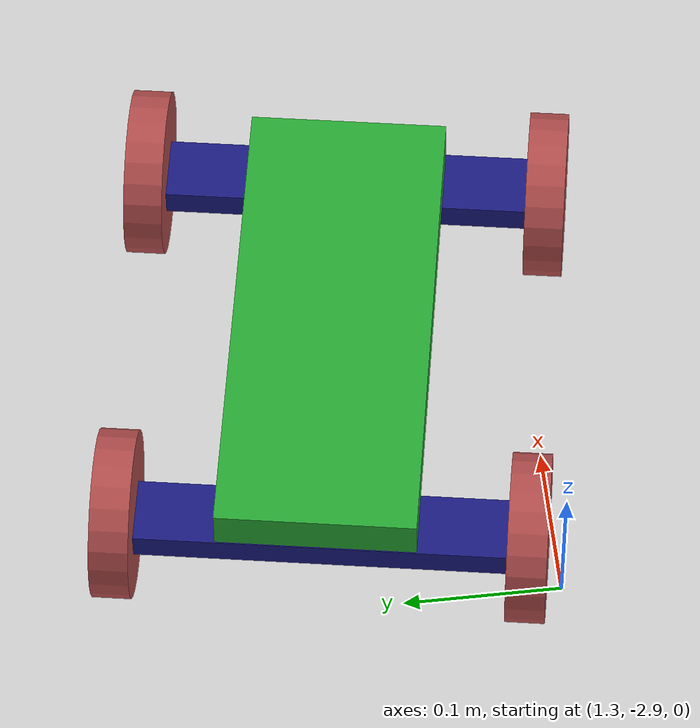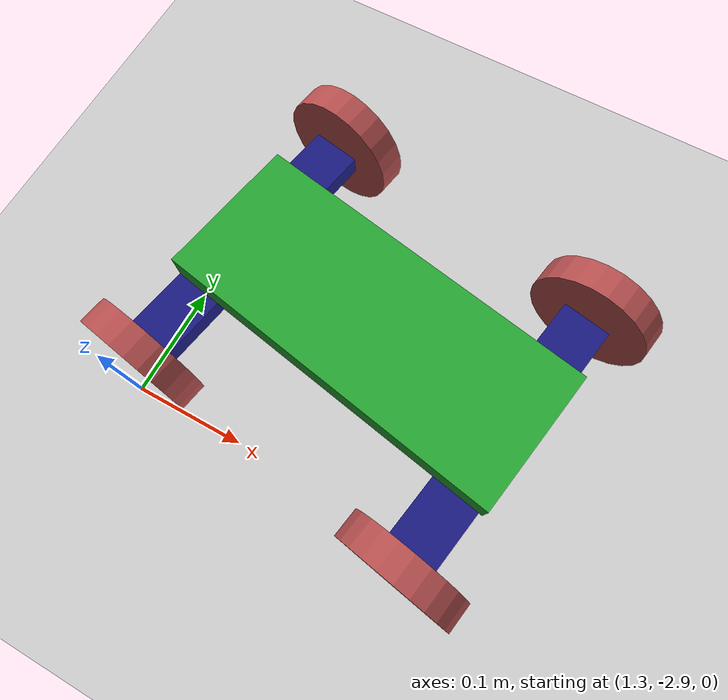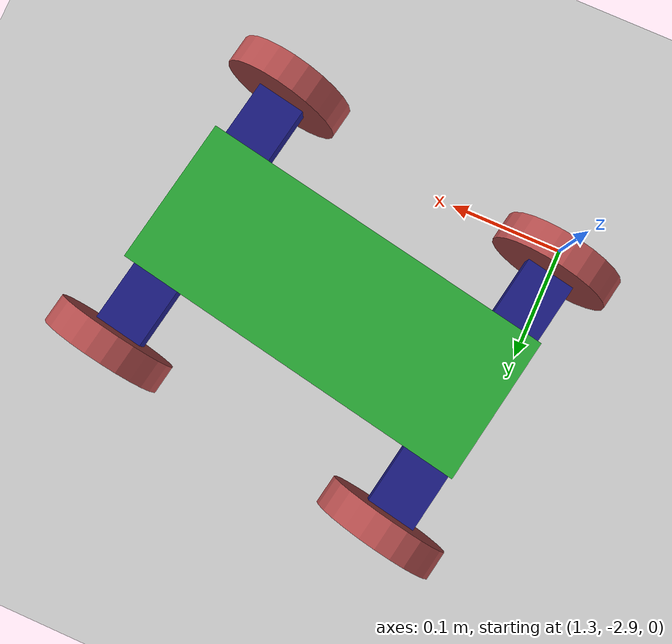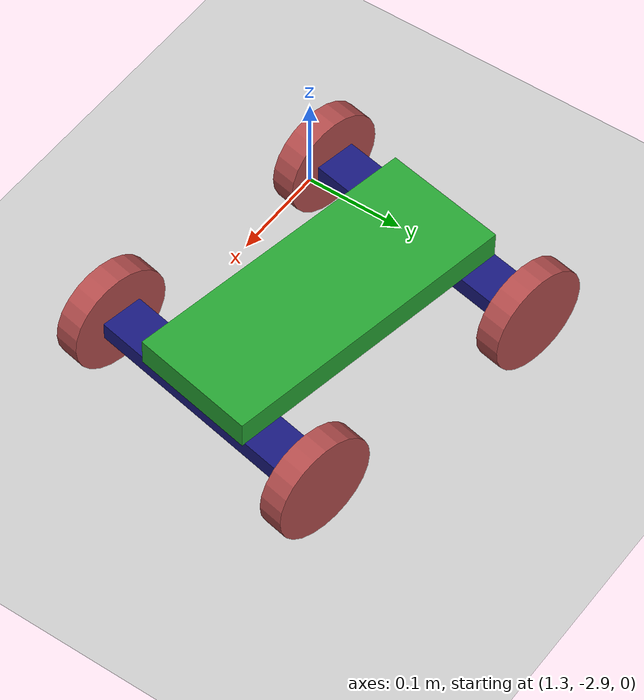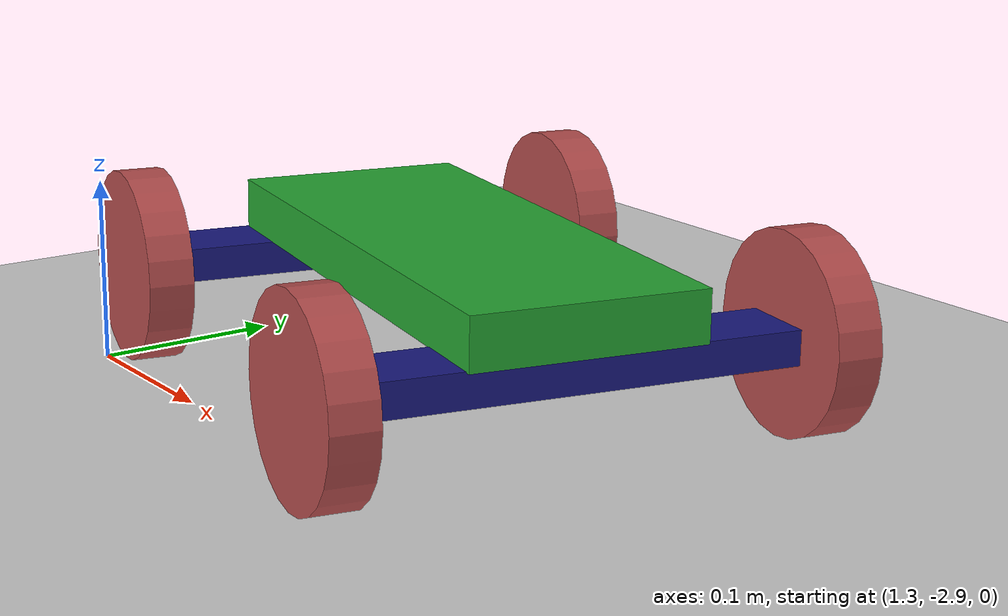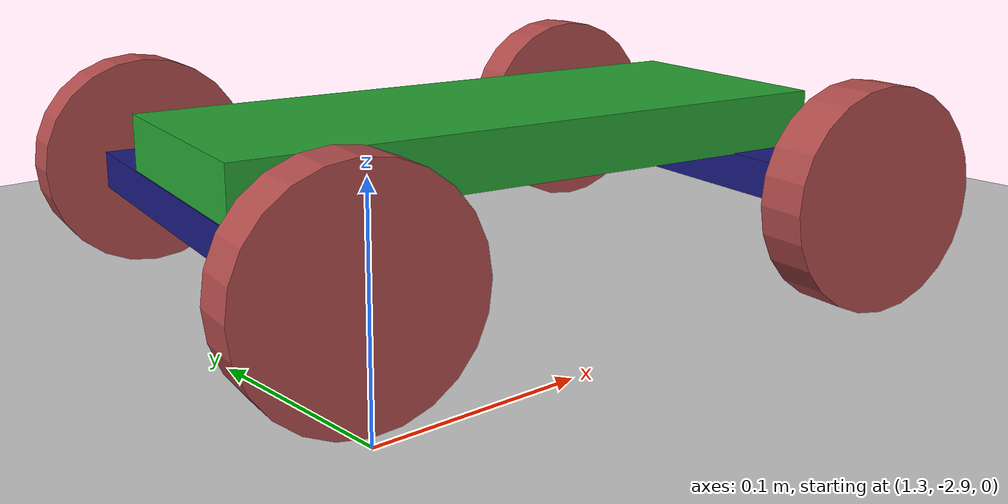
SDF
<sdf version="1.6">
 <world name="default">
  <model name="ground_plane">
   <static>1</static>
   <link name="link">
    <collision name="collision">
     <geometry><plane><normal>0 0 1</normal><size>100 100</size></plane></geometry>
     <surface><friction><ode><mu>100</mu><mu2>50</mu2></ode></friction></surface>
    </collision>
    <visual name="visual">
     <cast_shadows>0</cast_shadows>
     <geometry><plane><normal>0 0 1</normal><size>100 100</size></plane></geometry>
     <material>
      <script><uri>file://media/materials/scripts/gazebo.material</uri><name>Gazebo/Grey</name></script>
     </material>
    </visual>
   </link>
  </model>
  <model name="enwheer">
   <link name="link_0">
    <pose>0.246758 -0.006744 0.04096 0 -0 0</pose>
    <inertial>
     <mass>0.901262</mass>
     <inertia>
      <ixx>1.42341e-06</ixx>
      <ixy>0</ixy>
      <ixz>0</ixz>
      <iyy>8.35922e-06</iyy>
      <iyz>0</iyz>
      <izz>9.65174e-06</izz>
     </inertia>
    </inertial>
    <visual name="visual">
     <geometry><box><size>0.306687 0.125276 0.027544</size></box></geometry>
     <material>
      <lighting>1</lighting>
      <script><uri>file://media/materials/scripts/gazebo.material</uri><name>Gazebo/Green</name></script>
      <ambient>0.4 0.8 0.6 1</ambient>
      <diffuse>0.4 0.8 0.9 1</diffuse>
      <specular>0.41 0.81 0.81 1</specular>
      <emissive>0 0 0 1</emissive>
      <shader type="vertex"><normal_map>__default__</normal_map></shader>
     </material>
    </visual>
    <collision name="collision">
     <geometry><box><size>0.306687 0.125276 0.027544</size></box></geometry>
     <surface>
      <friction>
       <ode><mu>1</mu><mu2>1</mu2><fdir1>0 0 0</fdir1><slip1>0</slip1><slip2>0</slip2></ode>
       <torsional>
        <coefficient>1</coefficient>
        <patch_radius>0</patch_radius>
        <surface_radius>0</surface_radius>
        <use_patch_radius>1</use_patch_radius>
        <ode><slip>0</slip></ode>
       </torsional>
      </friction>
      <bounce><restitution_coefficient>0</restitution_coefficient><threshold>1e+06</threshold></bounce>
      <contact>
       <collide_without_contact>0</collide_without_contact>
       <collide_without_contact_bitmask>1</collide_without_contact_bitmask>
       <collide_bitmask>1</collide_bitmask>
       <ode>
        <soft_cfm>0</soft_cfm>
        <soft_erp>0.2</soft_erp>
        <kp>1e+13</kp>
        <kd>1</kd>
        <max_vel>0.01</max_vel>
        <min_depth>0</min_depth>
       </ode>
       <bullet>
        <split_impulse>1</split_impulse>
        <split_impulse_penetration_threshold>-0.01</split_impulse_penetration_threshold>
        <soft_cfm>0</soft_cfm>
        <soft_erp>0.2</soft_erp>
        <kp>1e+13</kp>
        <kd>1</kd>
       </bullet>
      </contact>
     </surface>
    </collision>
   </link>
   <link name="link_1">
    <pose>0.377424 -0.006572 0.033164 0 -0 0</pose>
    <inertial>
     <mass>1.82516e-05</mass>
     <inertia>
      <ixx>3.46685e-09</ixx>
      <ixy>0</ixy>
      <ixz>0</ixz>
      <iyy>3.46685e-09</iyy>
      <iyz>0</iyz>
      <izz>4.07787e-09</izz>
     </inertia>
    </inertial>
    <visual name="visual">
     <geometry><cylinder><radius>0.020977</radius><length>0.0103325</length></cylinder></geometry>
     <material>
      <lighting>1</lighting>
      <script><uri>file://media/materials/scripts/gazebo.material</uri><name>Gazebo/Grey</name></script>
      <ambient>0.3 0.3 0.3 1</ambient>
      <diffuse>0.7 0.7 0.7 1</diffuse>
      <specular>0.01 0.01 0.01 1</specular>
      <emissive>0 0 0 1</emissive>
      <shader type="vertex"><normal_map>__default__</normal_map></shader>
     </material>
    </visual>
    <collision name="collision">
     <geometry><cylinder><radius>0.020977</radius><length>0.010332</length></cylinder></geometry>
     <surface>
      <friction>
       <ode><mu>1</mu><mu2>1</mu2><fdir1>0 0 0</fdir1><slip1>0</slip1><slip2>0</slip2></ode>
       <torsional>
        <coefficient>1</coefficient>
        <patch_radius>0</patch_radius>
        <surface_radius>0</surface_radius>
        <use_patch_radius>1</use_patch_radius>
        <ode><slip>0</slip></ode>
       </torsional>
      </friction>
      <bounce><restitution_coefficient>0</restitution_coefficient><threshold>1e+06</threshold></bounce>
      <contact>
       <collide_without_contact>0</collide_without_contact>
       <collide_without_contact_bitmask>1</collide_without_contact_bitmask>
       <collide_bitmask>1</collide_bitmask>
       <ode>
        <soft_cfm>0</soft_cfm>
        <soft_erp>0.2</soft_erp>
        <kp>1e+13</kp>
        <kd>1</kd>
        <max_vel>0.01</max_vel>
        <min_depth>0</min_depth>
       </ode>
       <bullet>
        <split_impulse>1</split_impulse>
        <split_impulse_penetration_threshold>-0.01</split_impulse_penetration_threshold>
        <soft_cfm>0</soft_cfm>
        <soft_erp>0.2</soft_erp>
        <kp>1e+13</kp>
        <kd>1</kd>
       </bullet>
      </contact>
     </surface>
    </collision>
   </link>
   <model name="wheel">
    <link name="link_1_clone">
     <pose>0.966475 -0.011272 0.197727 0 -0 0</pose>
     <inertial>
      <mass>0.0900613</mass>
      <inertia>
       <ixx>6.585e-05</ixx>
       <ixy>0</ixy>
       <ixz>0</ixz>
       <iyy>5.861e-05</iyy>
       <iyz>0</iyz>
       <izz>7.429e-05</izz>
      </inertia>
     </inertial>
     <visual name="visual">
      <geometry><box><size>0.042286 0.233056 0.018284</size></box></geometry>
      <material>
       <lighting>1</lighting>
       <script><uri>file://media/materials/scripts/gazebo.material</uri><name>Gazebo/Grey</name></script>
       <ambient>0.1 0.1 0.5 1</ambient>
       <diffuse>0.1 0.1 0.5 1</diffuse>
       <specular>0.01 0.01 0.51 1</specular>
       <emissive>0 0 0 1</emissive>
       <shader type="vertex"><normal_map>__default__</normal_map></shader>
      </material>
     </visual>
     <collision name="collision">
      <geometry><box><size>0.042286 0.233056 0.018284</size></box></geometry>
      <surface>
       <friction>
        <ode><mu>1</mu><mu2>1</mu2><fdir1>0 0 0</fdir1><slip1>0</slip1><slip2>0</slip2></ode>
        <torsional>
         <coefficient>1</coefficient>
         <patch_radius>0</patch_radius>
         <surface_radius>0</surface_radius>
         <use_patch_radius>1</use_patch_radius>
         <ode><slip>0</slip></ode>
        </torsional>
       </friction>
       <bounce><restitution_coefficient>0</restitution_coefficient><threshold>1e+06</threshold></bounce>
       <contact>
        <collide_without_contact>0</collide_without_contact>
        <collide_without_contact_bitmask>1</collide_without_contact_bitmask>
        <collide_bitmask>1</collide_bitmask>
        <ode>
         <soft_cfm>0</soft_cfm>
         <soft_erp>0.2</soft_erp>
         <kp>1e+13</kp>
         <kd>1</kd>
         <max_vel>0.01</max_vel>
         <min_depth>0</min_depth>
        </ode>
        <bullet>
         <split_impulse>1</split_impulse>
         <split_impulse_penetration_threshold>-0.01</split_impulse_penetration_threshold>
         <soft_cfm>0</soft_cfm>
         <soft_erp>0.2</soft_erp>
         <kp>1e+13</kp>
         <kd>1</kd>
        </bullet>
       </contact>
      </surface>
     </collision>
    </link>
    <link name="link_2_clone_0">
     <pose>0.96771 0.116413 0.19965 -1.5707 0 0</pose>
     <inertial>
      <mass>0.0429199</mass>
      <inertia>
       <ixx>0.00072796</ixx>
       <ixy>0</ixy>
       <ixz>0</ixz>
       <iyy>0.00072796</iyy>
       <iyz>0</iyz>
       <izz>0.00118653</izz>
      </inertia>
     </inertial>
     <visual name="visual">
      <geometry><cylinder><radius>0.052724</radius><length>0.024467</length></cylinder></geometry>
      <material>
       <lighting>1</lighting>
       <script><uri>file://media/materials/scripts/gazebo.material</uri><name>Gazebo/Grey</name></script>
       <ambient>0.7 0.3 0.3 1</ambient>
       <diffuse>0.7 0.3 0.3 1</diffuse>
       <specular>0.6 0.01 0.01 1</specular>
       <emissive>0 0 0 1</emissive>
       <shader type="vertex"><normal_map>__default__</normal_map></shader>
      </material>
     </visual>
     <collision name="collision">
      <geometry><cylinder><radius>0.052724</radius><length>0.024779</length></cylinder></geometry>
      <surface>
       <friction>
        <ode><mu>1</mu><mu2>1</mu2><fdir1>0 0 0</fdir1><slip1>0</slip1><slip2>0</slip2></ode>
        <torsional>
         <coefficient>1</coefficient>
         <patch_radius>0</patch_radius>
         <surface_radius>0</surface_radius>
         <use_patch_radius>1</use_patch_radius>
         <ode><slip>0</slip></ode>
        </torsional>
       </friction>
       <bounce><restitution_coefficient>0</restitution_coefficient><threshold>1e+06</threshold></bounce>
       <contact>
        <collide_without_contact>0</collide_without_contact>
        <collide_without_contact_bitmask>1</collide_without_contact_bitmask>
        <collide_bitmask>1</collide_bitmask>
        <ode>
         <soft_cfm>0</soft_cfm>
         <soft_erp>0.2</soft_erp>
         <kp>1e+13</kp>
         <kd>1</kd>
         <max_vel>0.01</max_vel>
         <min_depth>0</min_depth>
        </ode>
        <bullet>
         <split_impulse>1</split_impulse>
         <split_impulse_penetration_threshold>-0.01</split_impulse_penetration_threshold>
         <soft_cfm>0</soft_cfm>
         <soft_erp>0.2</soft_erp>
         <kp>1e+13</kp>
         <kd>1</kd>
        </bullet>
       </contact>
      </surface>
     </collision>
    </link>
    <link name="link_2_clone_clone">
     <pose>0.967654 -0.140179 0.196376 1.5707 -0 0</pose>
     <inertial>
      <mass>0.0705144</mass>
      <inertia>
       <ixx>0.00161465</ixx>
       <ixy>0</ixy>
       <ixz>0</ixz>
       <iyy>0.00161465</iyy>
       <iyz>0</iyz>
       <izz>0.00250684</izz>
      </inertia>
     </inertial>
     <visual name="visual">
      <geometry><cylinder><radius>0.0527241</radius><length>0.024779</length></cylinder></geometry>
      <material>
       <lighting>1</lighting>
       <script><uri>file://media/materials/scripts/gazebo.material</uri><name>Gazebo/Grey</name></script>
       <ambient>0.7 0.3 0.3 1</ambient>
       <diffuse>0.7 0.3 0.3 1</diffuse>
       <specular>0.6 0.01 0.01 1</specular>
       <emissive>0 0 0 1</emissive>
       <shader type="vertex"><normal_map>__default__</normal_map></shader>
      </material>
     </visual>
     <collision name="collision">
      <geometry><cylinder><radius>0.052724</radius><length>0.024779</length></cylinder></geometry>
      <surface>
       <friction>
        <ode><mu>1</mu><mu2>1</mu2><fdir1>0 0 0</fdir1><slip1>0</slip1><slip2>0</slip2></ode>
        <torsional>
         <coefficient>1</coefficient>
         <patch_radius>0</patch_radius>
         <surface_radius>0</surface_radius>
         <use_patch_radius>1</use_patch_radius>
         <ode><slip>0</slip></ode>
        </torsional>
       </friction>
       <bounce><restitution_coefficient>0</restitution_coefficient><threshold>1e+06</threshold></bounce>
       <contact>
        <collide_without_contact>0</collide_without_contact>
        <collide_without_contact_bitmask>1</collide_without_contact_bitmask>
        <collide_bitmask>1</collide_bitmask>
        <ode>
         <soft_cfm>0</soft_cfm>
         <soft_erp>0.2</soft_erp>
         <kp>1e+13</kp>
         <kd>1</kd>
         <max_vel>0.01</max_vel>
         <min_depth>0</min_depth>
        </ode>
        <bullet>
         <split_impulse>1</split_impulse>
         <split_impulse_penetration_threshold>-0.01</split_impulse_penetration_threshold>
         <soft_cfm>0</soft_cfm>
         <soft_erp>0.2</soft_erp>
         <kp>1e+13</kp>
         <kd>1</kd>
        </bullet>
       </contact>
      </surface>
     </collision>
    </link>
    <joint name="link_1_clone_JOINT_14" type="revolute">
     <parent>link_1_clone</parent>
     <child>link_2_clone_clone</child>
     <axis>
      <xyz>0 0 1</xyz>
      <use_parent_model_frame>0</use_parent_model_frame>
      <limit>
       <lower>-1.79769e+308</lower>
       <upper>1.79769e+308</upper>
       <effort>-1</effort>
       <velocity>-1</velocity>
      </limit>
      <dynamics>
       <spring_reference>0</spring_reference>
       <spring_stiffness>0</spring_stiffness>
       <damping>0</damping>
       <friction>1</friction>
      </dynamics>
     </axis>
     <physics>
      <ode><limit><cfm>0</cfm><erp>0.2</erp></limit><suspension><cfm>0</cfm><erp>0.2</erp></suspension></ode>
     </physics>
    </joint>
    <joint name="link_1_clone_JOINT_15" type="revolute">
     <parent>link_1_clone</parent>
     <child>link_2_clone_0</child>
     <axis>
      <xyz>0 0 1</xyz>
      <use_parent_model_frame>0</use_parent_model_frame>
      <limit>
       <lower>-1.79769e+308</lower>
       <upper>1.79769e+308</upper>
       <effort>-1</effort>
       <velocity>-1</velocity>
      </limit>
      <dynamics>
       <spring_reference>0</spring_reference>
       <spring_stiffness>0</spring_stiffness>
       <damping>0</damping>
       <friction>1</friction>
      </dynamics>
     </axis>
     <physics>
      <ode><limit><cfm>0</cfm><erp>0.2</erp></limit><suspension><cfm>0</cfm><erp>0.2</erp></suspension></ode>
     </physics>
    </joint>
    <static>0</static>
    <pose>-0.590545 0.004638 -0.179239 0 -0 0</pose>
   </model>
   <model name="wheel_0">
    <link name="link_1_clone">
     <pose>0.966475 -0.011272 0.197727 0 -0 0</pose>
     <inertial>
      <mass>0.0900613</mass>
      <inertia>
       <ixx>6.585e-05</ixx>
       <ixy>0</ixy>
       <ixz>0</ixz>
       <iyy>5.861e-05</iyy>
       <iyz>0</iyz>
       <izz>7.429e-05</izz>
      </inertia>
     </inertial>
     <visual name="visual">
      <geometry><box><size>0.042286 0.233056 0.018284</size></box></geometry>
      <material>
       <lighting>1</lighting>
       <script><uri>file://media/materials/scripts/gazebo.material</uri><name>Gazebo/Grey</name></script>
       <ambient>0.1 0.1 0.5 1</ambient>
       <diffuse>0.1 0.1 0.5 1</diffuse>
       <specular>0.01 0.01 0.51 1</specular>
       <emissive>0 0 0 1</emissive>
       <shader type="vertex"><normal_map>__default__</normal_map></shader>
      </material>
     </visual>
     <collision name="collision">
      <geometry><box><size>0.042286 0.233056 0.018284</size></box></geometry>
      <surface>
       <friction>
        <ode><mu>1</mu><mu2>1</mu2><fdir1>0 0 0</fdir1><slip1>0</slip1><slip2>0</slip2></ode>
        <torsional>
         <coefficient>1</coefficient>
         <patch_radius>0</patch_radius>
         <surface_radius>0</surface_radius>
         <use_patch_radius>1</use_patch_radius>
         <ode><slip>0</slip></ode>
        </torsional>
       </friction>
       <bounce><restitution_coefficient>0</restitution_coefficient><threshold>1e+06</threshold></bounce>
       <contact>
        <collide_without_contact>0</collide_without_contact>
        <collide_without_contact_bitmask>1</collide_without_contact_bitmask>
        <collide_bitmask>1</collide_bitmask>
        <ode>
         <soft_cfm>0</soft_cfm>
         <soft_erp>0.2</soft_erp>
         <kp>1e+13</kp>
         <kd>1</kd>
         <max_vel>0.01</max_vel>
         <min_depth>0</min_depth>
        </ode>
        <bullet>
         <split_impulse>1</split_impulse>
         <split_impulse_penetration_threshold>-0.01</split_impulse_penetration_threshold>
         <soft_cfm>0</soft_cfm>
         <soft_erp>0.2</soft_erp>
         <kp>1e+13</kp>
         <kd>1</kd>
        </bullet>
       </contact>
      </surface>
     </collision>
    </link>
    <link name="link_2_clone_0">
     <pose>0.96771 0.116413 0.19965 -1.5707 0 0</pose>
     <inertial>
      <mass>0.0429199</mass>
      <inertia>
       <ixx>0.00072796</ixx>
       <ixy>0</ixy>
       <ixz>0</ixz>
       <iyy>0.00072796</iyy>
       <iyz>0</iyz>
       <izz>0.00118653</izz>
      </inertia>
     </inertial>
     <visual name="visual">
      <geometry><cylinder><radius>0.052724</radius><length>0.024467</length></cylinder></geometry>
      <material>
       <lighting>1</lighting>
       <script><uri>file://media/materials/scripts/gazebo.material</uri><name>Gazebo/Grey</name></script>
       <ambient>0.7 0.3 0.3 1</ambient>
       <diffuse>0.7 0.3 0.3 1</diffuse>
       <specular>0.6 0.01 0.01 1</specular>
       <emissive>0 0 0 1</emissive>
       <shader type="vertex"><normal_map>__default__</normal_map></shader>
      </material>
     </visual>
     <collision name="collision">
      <geometry><cylinder><radius>0.052724</radius><length>0.024779</length></cylinder></geometry>
      <surface>
       <friction>
        <ode><mu>1</mu><mu2>1</mu2><fdir1>0 0 0</fdir1><slip1>0</slip1><slip2>0</slip2></ode>
        <torsional>
         <coefficient>1</coefficient>
         <patch_radius>0</patch_radius>
         <surface_radius>0</surface_radius>
         <use_patch_radius>1</use_patch_radius>
         <ode><slip>0</slip></ode>
        </torsional>
       </friction>
       <bounce><restitution_coefficient>0</restitution_coefficient><threshold>1e+06</threshold></bounce>
       <contact>
        <collide_without_contact>0</collide_without_contact>
        <collide_without_contact_bitmask>1</collide_without_contact_bitmask>
        <collide_bitmask>1</collide_bitmask>
        <ode>
         <soft_cfm>0</soft_cfm>
         <soft_erp>0.2</soft_erp>
         <kp>1e+13</kp>
         <kd>1</kd>
         <max_vel>0.01</max_vel>
         <min_depth>0</min_depth>
        </ode>
        <bullet>
         <split_impulse>1</split_impulse>
         <split_impulse_penetration_threshold>-0.01</split_impulse_penetration_threshold>
         <soft_cfm>0</soft_cfm>
         <soft_erp>0.2</soft_erp>
         <kp>1e+13</kp>
         <kd>1</kd>
        </bullet>
       </contact>
      </surface>
     </collision>
    </link>
    <link name="link_2_clone_clone">
     <pose>0.967654 -0.140179 0.196376 1.5707 -0 0</pose>
     <inertial>
      <mass>0.0705144</mass>
      <inertia>
       <ixx>0.00161465</ixx>
       <ixy>0</ixy>
       <ixz>0</ixz>
       <iyy>0.00161465</iyy>
       <iyz>0</iyz>
       <izz>0.00250684</izz>
      </inertia>
     </inertial>
     <visual name="visual">
      <geometry><cylinder><radius>0.0527241</radius><length>0.024779</length></cylinder></geometry>
      <material>
       <lighting>1</lighting>
       <script><uri>file://media/materials/scripts/gazebo.material</uri><name>Gazebo/Grey</name></script>
       <ambient>0.7 0.3 0.3 1</ambient>
       <diffuse>0.7 0.3 0.3 1</diffuse>
       <specular>0.6 0.01 0.01 1</specular>
       <emissive>0 0 0 1</emissive>
       <shader type="vertex"><normal_map>__default__</normal_map></shader>
      </material>
     </visual>
     <collision name="collision">
      <geometry><cylinder><radius>0.052724</radius><length>0.024779</length></cylinder></geometry>
      <surface>
       <friction>
        <ode><mu>1</mu><mu2>1</mu2><fdir1>0 0 0</fdir1><slip1>0</slip1><slip2>0</slip2></ode>
        <torsional>
         <coefficient>1</coefficient>
         <patch_radius>0</patch_radius>
         <surface_radius>0</surface_radius>
         <use_patch_radius>1</use_patch_radius>
         <ode><slip>0</slip></ode>
        </torsional>
       </friction>
       <bounce><restitution_coefficient>0</restitution_coefficient><threshold>1e+06</threshold></bounce>
       <contact>
        <collide_without_contact>0</collide_without_contact>
        <collide_without_contact_bitmask>1</collide_without_contact_bitmask>
        <collide_bitmask>1</collide_bitmask>
        <ode>
         <soft_cfm>0</soft_cfm>
         <soft_erp>0.2</soft_erp>
         <kp>1e+13</kp>
         <kd>1</kd>
         <max_vel>0.01</max_vel>
         <min_depth>0</min_depth>
        </ode>
        <bullet>
         <split_impulse>1</split_impulse>
         <split_impulse_penetration_threshold>-0.01</split_impulse_penetration_threshold>
         <soft_cfm>0</soft_cfm>
         <soft_erp>0.2</soft_erp>
         <kp>1e+13</kp>
         <kd>1</kd>
        </bullet>
       </contact>
      </surface>
     </collision>
    </link>
    <joint name="link_1_clone_JOINT_14" type="revolute">
     <parent>link_1_clone</parent>
     <child>link_2_clone_clone</child>
     <axis>
      <xyz>0 0 1</xyz>
      <use_parent_model_frame>0</use_parent_model_frame>
      <limit>
       <lower>-1.79769e+308</lower>
       <upper>1.79769e+308</upper>
       <effort>-1</effort>
       <velocity>-1</velocity>
      </limit>
      <dynamics>
       <spring_reference>0</spring_reference>
       <spring_stiffness>0</spring_stiffness>
       <damping>0</damping>
       <friction>1</friction>
      </dynamics>
     </axis>
     <physics>
      <ode><limit><cfm>0</cfm><erp>0.2</erp></limit><suspension><cfm>0</cfm><erp>0.2</erp></suspension></ode>
     </physics>
    </joint>
    <joint name="link_1_clone_JOINT_15" type="revolute">
     <parent>link_1_clone</parent>
     <child>link_2_clone_0</child>
     <axis>
      <xyz>0 0 1</xyz>
      <use_parent_model_frame>0</use_parent_model_frame>
      <limit>
       <lower>-1.79769e+308</lower>
       <upper>1.79769e+308</upper>
       <effort>-1</effort>
       <velocity>-1</velocity>
      </limit>
      <dynamics>
       <spring_reference>0</spring_reference>
       <spring_stiffness>0</spring_stiffness>
       <damping>0</damping>
       <friction>1</friction>
      </dynamics>
     </axis>
     <physics>
      <ode><limit><cfm>0</cfm><erp>0.2</erp></limit><suspension><cfm>0</cfm><erp>0.2</erp></suspension></ode>
     </physics>
    </joint>
    <static>0</static>
    <pose>-0.85257 0.002512 -0.179549 0 -0 0</pose>
   </model>
   <joint name="link_0_JOINT_4" type="revolute">
    <parent>link_0</parent>
    <child>link_1</child>
    <axis>
     <xyz>0 0 -1</xyz>
     <use_parent_model_frame>0</use_parent_model_frame>
     <limit><lower>-0.38</lower><upper>0.38</upper><effort>-1</effort><velocity>-1</velocity></limit>
     <dynamics>
      <spring_reference>0</spring_reference>
      <spring_stiffness>0</spring_stiffness>
      <damping>0</damping>
      <friction>2</friction>
     </dynamics>
    </axis>
    <physics>
     <ode><limit><cfm>0</cfm><erp>0</erp></limit><suspension><cfm>0</cfm><erp>0</erp></suspension></ode>
    </physics>
   </joint>
   <joint name="link_0_JOINT_6" type="fixed">
    <parent>link_0</parent>
    <child>wheel_0::link_1_clone</child>
    <physics>
     <ode><limit><cfm>0</cfm><erp>0.2</erp></limit><suspension><cfm>0</cfm><erp>0.2</erp></suspension></ode>
    </physics>
   </joint>
   <joint name="link_1_clone_JOINT_5" type="fixed">
    <parent>wheel::link_1_clone</parent>
    <child>link_1</child>
    <physics>
     <ode><limit><cfm>0</cfm><erp>0.2</erp></limit><suspension><cfm>0</cfm><erp>0.2</erp></suspension></ode>
    </physics>
   </joint>
   <static>0</static>
   <pose>1.21886 -2.72275 0.032762 -0.012404 -0.004139 -0.181624</pose>
  </model>
 </world>
</sdf>
